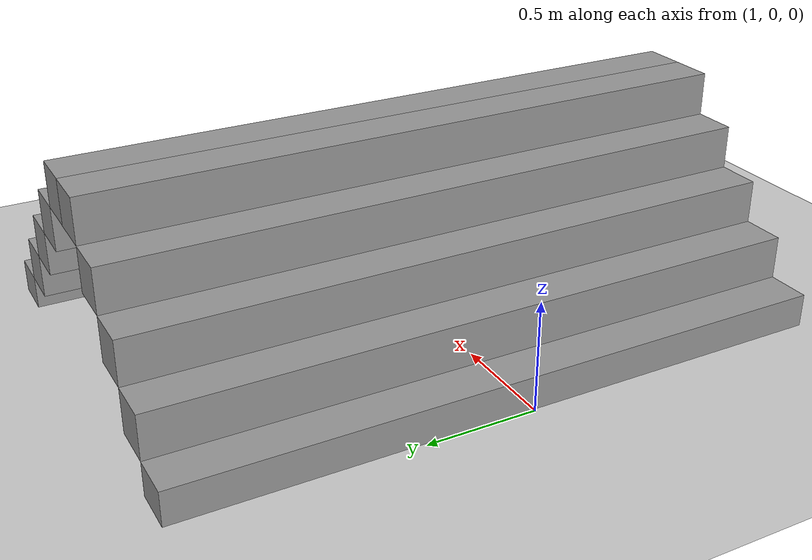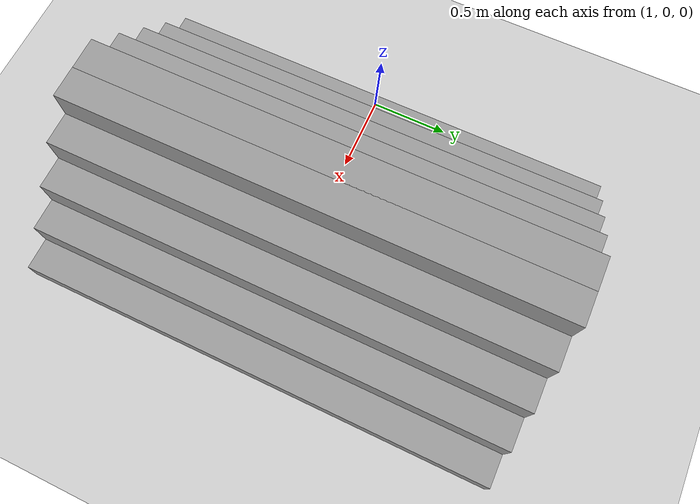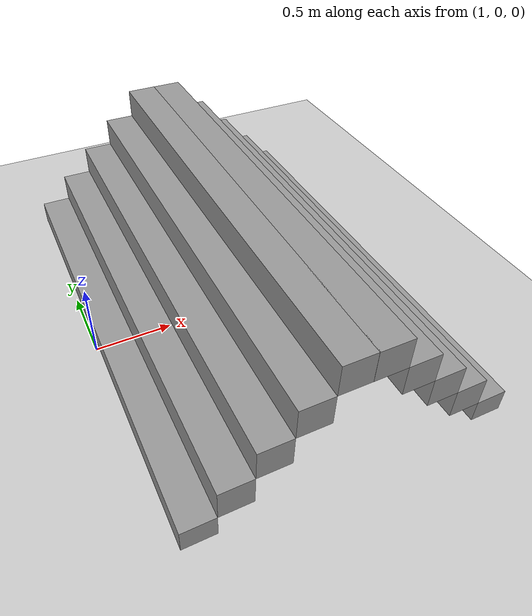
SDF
<sdf version="1.7">
 <world name="default">
  <light name="sun" type="directional">
   <pose>0 0 10 0 -0 0</pose>
   <diffuse>0.8 0.8 0.8 1</diffuse>
   <specular>0.2 0.2 0.2 1</specular>
   <attenuation>
    <range>1000</range>
    <constant>0.9</constant>
    <linear>0.01</linear>
    <quadratic>0.001</quadratic>
   </attenuation>
   <direction>-0.5 0.1 -0.9</direction>
   <spot><inner_angle>0</inner_angle><outer_angle>0</outer_angle><falloff>0</falloff></spot>
  </light>
  <model name="ground_plane">
   <static>1</static>
   <link name="link">
    <collision name="collision">
     <geometry><plane><normal>0 0 1</normal><size>100 100</size></plane></geometry>
     <surface>
      <contact><collide_bitmask>65535</collide_bitmask></contact>
      <friction><ode><mu>100</mu><mu2>50</mu2></ode></friction>
     </surface>
    </collision>
    <visual name="visual">
     <cast_shadows>0</cast_shadows>
     <geometry><plane><normal>0 0 1</normal><size>100 100</size></plane></geometry>
     <material>
      <script><uri>file://media/materials/scripts/gazebo.material</uri><name>Gazebo/Grey</name></script>
     </material>
    </visual>
   </link>
  </model>
  <gravity>0 0 -9.8</gravity>
  <magnetic_field>6e-06 2.3e-05 -4.2e-05</magnetic_field>
  <atmosphere type="adiabatic"/>
  <physics type="ode">
   <max_step_size>0.001</max_step_size>
   <real_time_factor>1</real_time_factor>
   <real_time_update_rate>1000</real_time_update_rate>
  </physics>
  <scene><ambient>0.4 0.4 0.4 1</ambient><background>0.7 0.7 0.7 1</background><shadows>1</shadows></scene>
  <spherical_coordinates>
   <surface_model>EARTH_WGS84</surface_model>
   <latitude_deg>0</latitude_deg>
   <longitude_deg>0</longitude_deg>
   <elevation>0</elevation>
   <heading_deg>0</heading_deg>
  </spherical_coordinates>
  <model name="stairs">
   <link name="Stairs_2">
    <visual name="Stairs_2_Visual_3">
     <pose>1.775 -0 0.65 0 -0 1.5708</pose>
     <geometry><box><size>3 0.2 0.2</size></box></geometry>
     <material>
      <script><uri>file://media/materials/scripts/gazebo.material</uri><name>Gazebo/Grey</name></script>
      <ambient>1 1 1 1</ambient>
      <shader type="pixel"/>
     </material>
     <meta><layer>0</layer></meta>
    </visual>
    <visual name="Stairs_2_Visual_0">
     <pose>1.175 -0 0.05 0 -0 1.5708</pose>
     <geometry><box><size>3 0.2 0.2</size></box></geometry>
     <material>
      <script><uri>file://media/materials/scripts/gazebo.material</uri><name>Gazebo/Grey</name></script>
      <ambient>1 1 1 1</ambient>
      <shader type="pixel"/>
     </material>
     <meta><layer>0</layer></meta>
    </visual>
    <visual name="Stairs_2_Visual_4">
     <pose>1.975 0 0.85 0 -0 1.5708</pose>
     <geometry><box><size>3 0.2 0.2</size></box></geometry>
     <material>
      <script><uri>file://media/materials/scripts/gazebo.material</uri><name>Gazebo/Grey</name></script>
      <ambient>1 1 1 1</ambient>
      <shader type="pixel"/>
     </material>
     <meta><layer>0</layer></meta>
    </visual>
    <visual name="Stairs_2_Visual_1">
     <pose>1.375 -0 0.25 0 -0 1.5708</pose>
     <geometry><box><size>3 0.2 0.2</size></box></geometry>
     <material>
      <script><uri>file://media/materials/scripts/gazebo.material</uri><name>Gazebo/Grey</name></script>
      <ambient>1 1 1 1</ambient>
      <shader type="pixel"/>
     </material>
     <meta><layer>0</layer></meta>
    </visual>
    <visual name="Stairs_2_Visual_2">
     <pose>1.575 -0 0.45 0 -0 1.5708</pose>
     <geometry><box><size>3 0.2 0.2</size></box></geometry>
     <material>
      <script><uri>file://media/materials/scripts/gazebo.material</uri><name>Gazebo/Grey</name></script>
      <ambient>1 1 1 1</ambient>
      <shader type="pixel"/>
     </material>
     <meta><layer>0</layer></meta>
    </visual>
    <collision name="Stairs_2_Collision_3">
     <pose>1.775 0 0.65 0 -0 1.5708</pose>
     <geometry><box><size>3 0.2 0.2</size></box></geometry>
     <surface>
      <friction>
       <ode><mu>1</mu><mu2>1</mu2><fdir1>0 0 0</fdir1><slip1>0</slip1><slip2>0</slip2></ode>
       <torsional>
        <coefficient>1</coefficient>
        <patch_radius>0</patch_radius>
        <surface_radius>0</surface_radius>
        <use_patch_radius>1</use_patch_radius>
        <ode><slip>0</slip></ode>
       </torsional>
      </friction>
      <bounce><restitution_coefficient>0</restitution_coefficient><threshold>1e+06</threshold></bounce>
      <contact>
       <collide_without_contact>0</collide_without_contact>
       <collide_without_contact_bitmask>1</collide_without_contact_bitmask>
       <collide_bitmask>1</collide_bitmask>
       <ode>
        <soft_cfm>0</soft_cfm>
        <soft_erp>0.2</soft_erp>
        <kp>1e+13</kp>
        <kd>1</kd>
        <max_vel>0.01</max_vel>
        <min_depth>0</min_depth>
       </ode>
       <bullet>
        <split_impulse>1</split_impulse>
        <split_impulse_penetration_threshold>-0.01</split_impulse_penetration_threshold>
        <soft_cfm>0</soft_cfm>
        <soft_erp>0.2</soft_erp>
        <kp>1e+13</kp>
        <kd>1</kd>
       </bullet>
      </contact>
     </surface>
    </collision>
    <collision name="Stairs_2_Collision_2">
     <pose>1.575 0 0.45 0 -0 1.5708</pose>
     <geometry><box><size>3 0.2 0.2</size></box></geometry>
     <surface>
      <friction>
       <ode><mu>1</mu><mu2>1</mu2><fdir1>0 0 0</fdir1><slip1>0</slip1><slip2>0</slip2></ode>
       <torsional>
        <coefficient>1</coefficient>
        <patch_radius>0</patch_radius>
        <surface_radius>0</surface_radius>
        <use_patch_radius>1</use_patch_radius>
        <ode><slip>0</slip></ode>
       </torsional>
      </friction>
      <bounce><restitution_coefficient>0</restitution_coefficient><threshold>1e+06</threshold></bounce>
      <contact>
       <collide_without_contact>0</collide_without_contact>
       <collide_without_contact_bitmask>1</collide_without_contact_bitmask>
       <collide_bitmask>1</collide_bitmask>
       <ode>
        <soft_cfm>0</soft_cfm>
        <soft_erp>0.2</soft_erp>
        <kp>1e+13</kp>
        <kd>1</kd>
        <max_vel>0.01</max_vel>
        <min_depth>0</min_depth>
       </ode>
       <bullet>
        <split_impulse>1</split_impulse>
        <split_impulse_penetration_threshold>-0.01</split_impulse_penetration_threshold>
        <soft_cfm>0</soft_cfm>
        <soft_erp>0.2</soft_erp>
        <kp>1e+13</kp>
        <kd>1</kd>
       </bullet>
      </contact>
     </surface>
    </collision>
    <collision name="Stairs_2_Collision_4">
     <pose>1.975 0 0.85 0 -0 1.5708</pose>
     <geometry><box><size>3 0.2 0.2</size></box></geometry>
     <surface>
      <friction>
       <ode><mu>1</mu><mu2>1</mu2><fdir1>0 0 0</fdir1><slip1>0</slip1><slip2>0</slip2></ode>
       <torsional>
        <coefficient>1</coefficient>
        <patch_radius>0</patch_radius>
        <surface_radius>0</surface_radius>
        <use_patch_radius>1</use_patch_radius>
        <ode><slip>0</slip></ode>
       </torsional>
      </friction>
      <bounce><restitution_coefficient>0</restitution_coefficient><threshold>1e+06</threshold></bounce>
      <contact>
       <collide_without_contact>0</collide_without_contact>
       <collide_without_contact_bitmask>1</collide_without_contact_bitmask>
       <collide_bitmask>1</collide_bitmask>
       <ode>
        <soft_cfm>0</soft_cfm>
        <soft_erp>0.2</soft_erp>
        <kp>1e+13</kp>
        <kd>1</kd>
        <max_vel>0.01</max_vel>
        <min_depth>0</min_depth>
       </ode>
       <bullet>
        <split_impulse>1</split_impulse>
        <split_impulse_penetration_threshold>-0.01</split_impulse_penetration_threshold>
        <soft_cfm>0</soft_cfm>
        <soft_erp>0.2</soft_erp>
        <kp>1e+13</kp>
        <kd>1</kd>
       </bullet>
      </contact>
     </surface>
    </collision>
    <collision name="Stairs_2_Collision_0">
     <pose>1.175 0 0.05 0 -0 1.5708</pose>
     <geometry><box><size>3 0.2 0.2</size></box></geometry>
     <surface>
      <friction>
       <ode><mu>1</mu><mu2>1</mu2><fdir1>0 0 0</fdir1><slip1>0</slip1><slip2>0</slip2></ode>
       <torsional>
        <coefficient>1</coefficient>
        <patch_radius>0</patch_radius>
        <surface_radius>0</surface_radius>
        <use_patch_radius>1</use_patch_radius>
        <ode><slip>0</slip></ode>
       </torsional>
      </friction>
      <bounce><restitution_coefficient>0</restitution_coefficient><threshold>1e+06</threshold></bounce>
      <contact>
       <collide_without_contact>0</collide_without_contact>
       <collide_without_contact_bitmask>1</collide_without_contact_bitmask>
       <collide_bitmask>1</collide_bitmask>
       <ode>
        <soft_cfm>0</soft_cfm>
        <soft_erp>0.2</soft_erp>
        <kp>1e+13</kp>
        <kd>1</kd>
        <max_vel>0.01</max_vel>
        <min_depth>0</min_depth>
       </ode>
       <bullet>
        <split_impulse>1</split_impulse>
        <split_impulse_penetration_threshold>-0.01</split_impulse_penetration_threshold>
        <soft_cfm>0</soft_cfm>
        <soft_erp>0.2</soft_erp>
        <kp>1e+13</kp>
        <kd>1</kd>
       </bullet>
      </contact>
     </surface>
    </collision>
    <collision name="Stairs_2_Collision_1">
     <pose>1.375 0 0.25 0 -0 1.5708</pose>
     <geometry><box><size>3 0.2 0.2</size></box></geometry>
     <surface>
      <friction>
       <ode><mu>1</mu><mu2>1</mu2><fdir1>0 0 0</fdir1><slip1>0</slip1><slip2>0</slip2></ode>
       <torsional>
        <coefficient>1</coefficient>
        <patch_radius>0</patch_radius>
        <surface_radius>0</surface_radius>
        <use_patch_radius>1</use_patch_radius>
        <ode><slip>0</slip></ode>
       </torsional>
      </friction>
      <bounce><restitution_coefficient>0</restitution_coefficient><threshold>1e+06</threshold></bounce>
      <contact>
       <collide_without_contact>0</collide_without_contact>
       <collide_without_contact_bitmask>1</collide_without_contact_bitmask>
       <collide_bitmask>1</collide_bitmask>
       <ode>
        <soft_cfm>0</soft_cfm>
        <soft_erp>0.2</soft_erp>
        <kp>1e+13</kp>
        <kd>1</kd>
        <max_vel>0.01</max_vel>
        <min_depth>0</min_depth>
       </ode>
       <bullet>
        <split_impulse>1</split_impulse>
        <split_impulse_penetration_threshold>-0.01</split_impulse_penetration_threshold>
        <soft_cfm>0</soft_cfm>
        <soft_erp>0.2</soft_erp>
        <kp>1e+13</kp>
        <kd>1</kd>
       </bullet>
      </contact>
     </surface>
    </collision>
   </link>
   <model name="stairs">
    <pose>4.14673 -0.003522 0 0 -0 3.14016</pose>
    <link name="Stairs_2">
     <visual name="Stairs_2_Visual_0">
      <pose>1.175 -0 0.05 0 -0 1.5708</pose>
      <geometry><box><size>3 0.2 0.2</size></box></geometry>
      <material>
       <script><uri>file://media/materials/scripts/gazebo.material</uri><name>Gazebo/Grey</name></script>
       <ambient>1 1 1 1</ambient>
      </material>
      <meta><layer>0</layer></meta>
     </visual>
     <collision name="Stairs_2_Collision_0">
      <geometry><box><size>3 0.2 0.2</size></box></geometry>
      <pose>1.175 -0 0.05 0 -0 1.5708</pose>
     </collision>
     <visual name="Stairs_2_Visual_1">
      <pose>1.375 -0 0.25 0 -0 1.5708</pose>
      <geometry><box><size>3 0.2 0.2</size></box></geometry>
      <material>
       <script><uri>file://media/materials/scripts/gazebo.material</uri><name>Gazebo/Grey</name></script>
       <ambient>1 1 1 1</ambient>
      </material>
      <meta><layer>0</layer></meta>
     </visual>
     <collision name="Stairs_2_Collision_1">
      <geometry><box><size>3 0.2 0.2</size></box></geometry>
      <pose>1.375 -0 0.25 0 -0 1.5708</pose>
     </collision>
     <visual name="Stairs_2_Visual_2">
      <pose>1.575 -0 0.45 0 -0 1.5708</pose>
      <geometry><box><size>3 0.2 0.2</size></box></geometry>
      <material>
       <script><uri>file://media/materials/scripts/gazebo.material</uri><name>Gazebo/Grey</name></script>
       <ambient>1 1 1 1</ambient>
      </material>
      <meta><layer>0</layer></meta>
     </visual>
     <collision name="Stairs_2_Collision_2">
      <geometry><box><size>3 0.2 0.2</size></box></geometry>
      <pose>1.575 -0 0.45 0 -0 1.5708</pose>
     </collision>
     <visual name="Stairs_2_Visual_3">
      <pose>1.775 -0 0.65 0 -0 1.5708</pose>
      <geometry><box><size>3 0.2 0.2</size></box></geometry>
      <material>
       <script><uri>file://media/materials/scripts/gazebo.material</uri><name>Gazebo/Grey</name></script>
       <ambient>1 1 1 1</ambient>
      </material>
      <meta><layer>0</layer></meta>
     </visual>
     <collision name="Stairs_2_Collision_3">
      <geometry><box><size>3 0.2 0.2</size></box></geometry>
      <pose>1.775 -0 0.65 0 -0 1.5708</pose>
     </collision>
     <visual name="Stairs_2_Visual_4">
      <pose>1.975 0 0.85 0 -0 1.5708</pose>
      <geometry><box><size>3 0.2 0.2</size></box></geometry>
      <material>
       <script><uri>file://media/materials/scripts/gazebo.material</uri><name>Gazebo/Grey</name></script>
       <ambient>1 1 1 1</ambient>
      </material>
      <meta><layer>0</layer></meta>
     </visual>
     <collision name="Stairs_2_Collision_4">
      <geometry><box><size>3 0.2 0.2</size></box></geometry>
      <pose>1.975 0 0.85 0 -0 1.5708</pose>
     </collision>
    </link>
    <static>1</static>
   </model>
   <static>1</static>
   <pose>-0.057286 0.056674 0 0 -0 0</pose>
  </model>
 </world>
</sdf>
